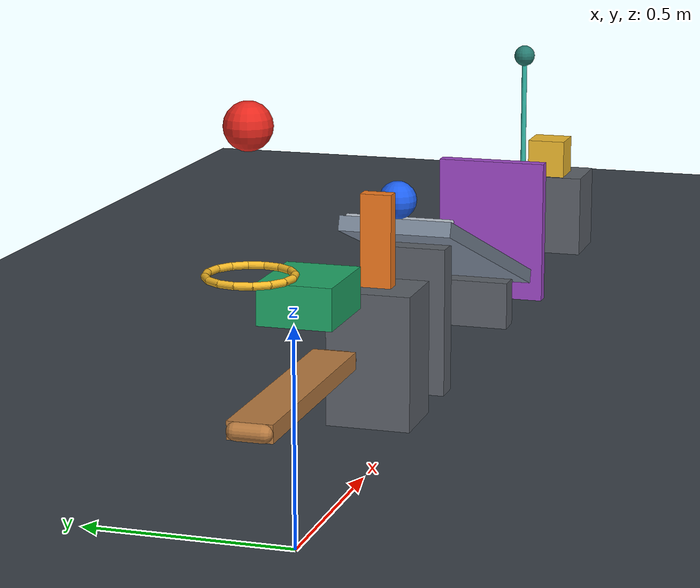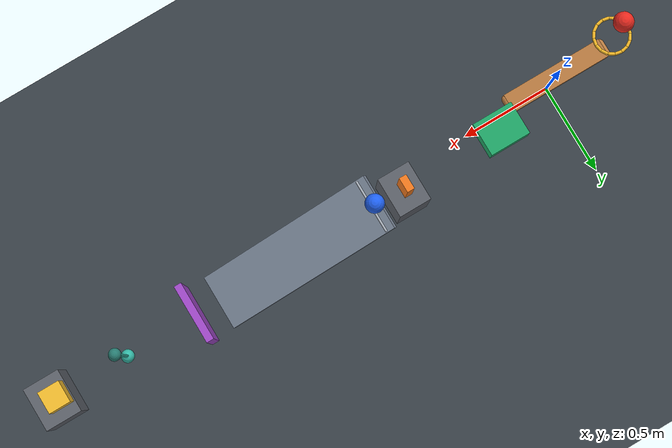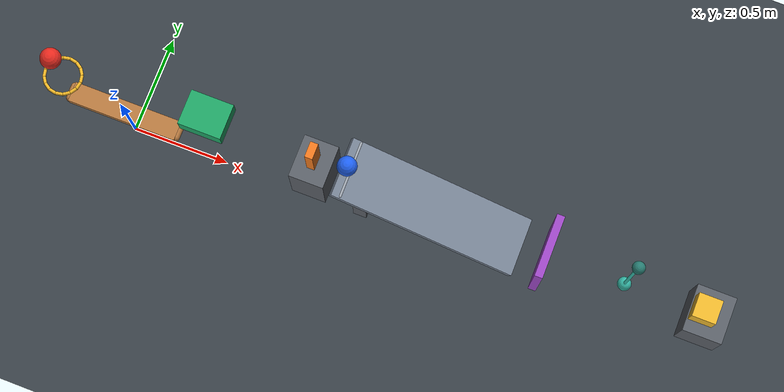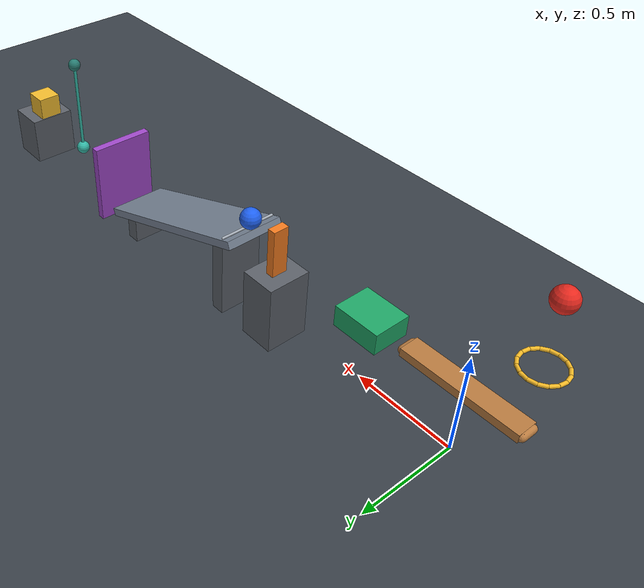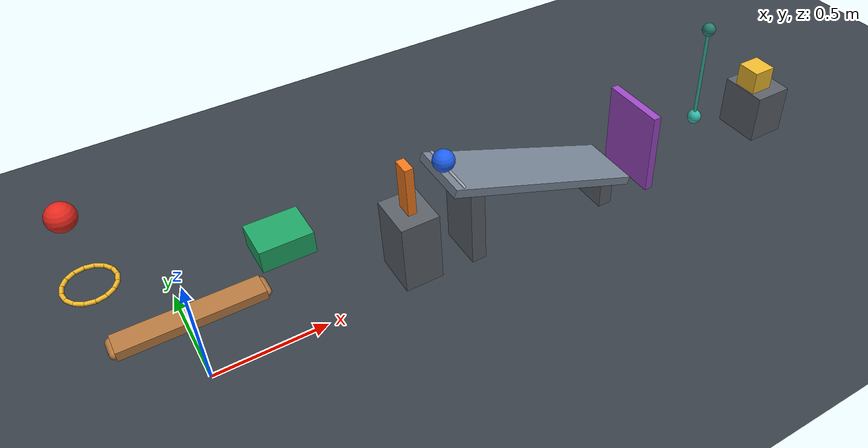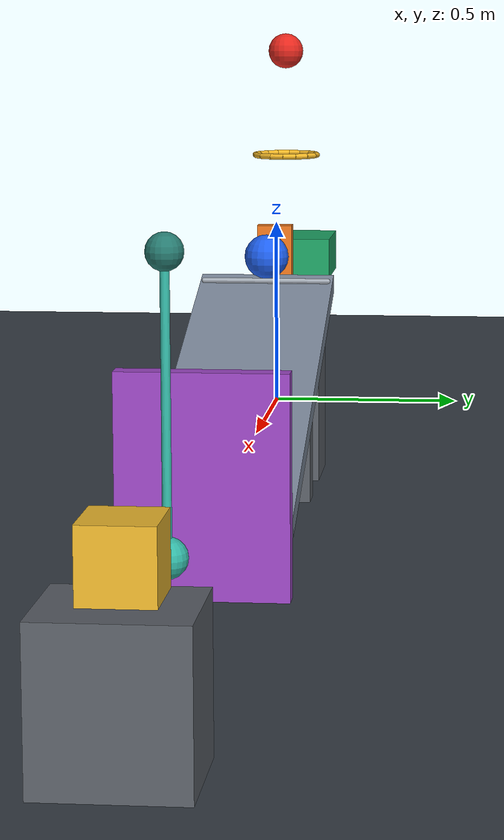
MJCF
<mujoco model="revised_passive_chain_reaction">
  <compiler angle="degree" autolimits="true" inertiafromgeom="auto"/>
  <option timestep="0.002" gravity="0 0 -9.81" integrator="implicitfast" solver="Newton" cone="elliptic" iterations="100" tolerance="1e-10"/>

  <!-- Contact damping approximates restitution 0.04; MJCF has no direct restitution coefficient. -->
  <!-- Sliding friction is 0.72. Additional torsional and rolling friction dissipate residual ball motion. -->
  <!-- Explicit inertias represent a center-weighted lever, top-weighted door, and hub-weighted pendulum. -->
  <!-- The start keyframe uses model reference positions and zero velocities. -->

  <visual>
    <headlight ambient="0.35 0.35 0.35" diffuse="0.7 0.7 0.7" specular="0.2 0.2 0.2"/>
  </visual>

  <worldbody>
    <light name="scene_light" pos="1 -2 4" dir="0 0 -1" directional="true"/>
    <camera name="overview" pos="1.4 -4.5 2.8" xyaxes="1 0 0 0 0.45 0.893"/>

    <geom name="floor" type="plane" pos="0 0 0" size="6 4 0.1" friction="0.72 0.005 0.002" condim="6" solref="0.008 0.716" solimp="0.95 0.99 0.001" rgba="0.22 0.25 0.28 1"/>

    <!-- Ball center starts 0.30 m above the ring plane.
         Lever contact occurs with its center 0.25 m below that plane. -->
    <body name="ball1" pos="-0.265 0 0.970">
      <freejoint name="ball1_free"/>
      <geom name="ball1_sphere" type="sphere" size="0.05" mass="0.20" friction="0.72 0.005 0.002" condim="6" solref="0.008 0.716" solimp="0.95 0.99 0.001" rgba="0.9 0.16 0.12 1"/>
    </body>

    <!-- Horizontal polygonal ring, approximately 0.160 m clear diameter. -->
    <body name="ring1" pos="-0.265 0 0.670">
      <geom name="ring1_segment00" type="capsule" fromto="0.089724 0 0 0.082894 0.034336 0" size="0.008" friction="0.72 0.005 0.002" condim="6" solref="0.008 0.716" solimp="0.95 0.99 0.001" rgba="0.95 0.72 0.15 1"/>
      <geom name="ring1_segment01" type="capsule" fromto="0.082894 0.034336 0 0.063444 0.063444 0" size="0.008" friction="0.72 0.005 0.002" condim="6" solref="0.008 0.716" solimp="0.95 0.99 0.001" rgba="0.95 0.72 0.15 1"/>
      <geom name="ring1_segment02" type="capsule" fromto="0.063444 0.063444 0 0.034336 0.082894 0" size="0.008" friction="0.72 0.005 0.002" condim="6" solref="0.008 0.716" solimp="0.95 0.99 0.001" rgba="0.95 0.72 0.15 1"/>
      <geom name="ring1_segment03" type="capsule" fromto="0.034336 0.082894 0 0 0.089724 0" size="0.008" friction="0.72 0.005 0.002" condim="6" solref="0.008 0.716" solimp="0.95 0.99 0.001" rgba="0.95 0.72 0.15 1"/>
      <geom name="ring1_segment04" type="capsule" fromto="0 0.089724 0 -0.034336 0.082894 0" size="0.008" friction="0.72 0.005 0.002" condim="6" solref="0.008 0.716" solimp="0.95 0.99 0.001" rgba="0.95 0.72 0.15 1"/>
      <geom name="ring1_segment05" type="capsule" fromto="-0.034336 0.082894 0 -0.063444 0.063444 0" size="0.008" friction="0.72 0.005 0.002" condim="6" solref="0.008 0.716" solimp="0.95 0.99 0.001" rgba="0.95 0.72 0.15 1"/>
      <geom name="ring1_segment06" type="capsule" fromto="-0.063444 0.063444 0 -0.082894 0.034336 0" size="0.008" friction="0.72 0.005 0.002" condim="6" solref="0.008 0.716" solimp="0.95 0.99 0.001" rgba="0.95 0.72 0.15 1"/>
      <geom name="ring1_segment07" type="capsule" fromto="-0.082894 0.034336 0 -0.089724 0 0" size="0.008" friction="0.72 0.005 0.002" condim="6" solref="0.008 0.716" solimp="0.95 0.99 0.001" rgba="0.95 0.72 0.15 1"/>
      <geom name="ring1_segment08" type="capsule" fromto="-0.089724 0 0 -0.082894 -0.034336 0" size="0.008" friction="0.72 0.005 0.002" condim="6" solref="0.008 0.716" solimp="0.95 0.99 0.001" rgba="0.95 0.72 0.15 1"/>
      <geom name="ring1_segment09" type="capsule" fromto="-0.082894 -0.034336 0 -0.063444 -0.063444 0" size="0.008" friction="0.72 0.005 0.002" condim="6" solref="0.008 0.716" solimp="0.95 0.99 0.001" rgba="0.95 0.72 0.15 1"/>
      <geom name="ring1_segment10" type="capsule" fromto="-0.063444 -0.063444 0 -0.034336 -0.082894 0" size="0.008" friction="0.72 0.005 0.002" condim="6" solref="0.008 0.716" solimp="0.95 0.99 0.001" rgba="0.95 0.72 0.15 1"/>
      <geom name="ring1_segment11" type="capsule" fromto="-0.034336 -0.082894 0 0 -0.089724 0" size="0.008" friction="0.72 0.005 0.002" condim="6" solref="0.008 0.716" solimp="0.95 0.99 0.001" rgba="0.95 0.72 0.15 1"/>
      <geom name="ring1_segment12" type="capsule" fromto="0 -0.089724 0 0.034336 -0.082894 0" size="0.008" friction="0.72 0.005 0.002" condim="6" solref="0.008 0.716" solimp="0.95 0.99 0.001" rgba="0.95 0.72 0.15 1"/>
      <geom name="ring1_segment13" type="capsule" fromto="0.034336 -0.082894 0 0.063444 -0.063444 0" size="0.008" friction="0.72 0.005 0.002" condim="6" solref="0.008 0.716" solimp="0.95 0.99 0.001" rgba="0.95 0.72 0.15 1"/>
      <geom name="ring1_segment14" type="capsule" fromto="0.063444 -0.063444 0 0.082894 -0.034336 0" size="0.008" friction="0.72 0.005 0.002" condim="6" solref="0.008 0.716" solimp="0.95 0.99 0.001" rgba="0.95 0.72 0.15 1"/>
      <geom name="ring1_segment15" type="capsule" fromto="0.082894 -0.034336 0 0.089724 0 0" size="0.008" friction="0.72 0.005 0.002" condim="6" solref="0.008 0.716" solimp="0.95 0.99 0.001" rgba="0.95 0.72 0.15 1"/>
    </body>

    <!-- Overall lever envelope is 0.60 x 0.10 x 0.04 m.
         Its mass is concentrated near the center hinge rather than distributed uniformly. -->
    <body name="lever1" pos="0 0 0.350">
      <inertial pos="0 0 0" mass="0.50" diaginertia="0.0005 0.0060 0.0061"/>
      <joint name="lever1_hinge" type="hinge" axis="0 -1 0" range="0 45" damping="0.04" solreflimit="0.004 1" solimplimit="0.99 0.999 0.001"/>
      <geom name="lever1_bar" type="box" size="0.28 0.05 0.02" density="0" friction="0.72 0.005 0.002" condim="6" solref="0.008 0.716" solimp="0.95 0.99 0.001" rgba="0.72 0.48 0.25 1"/>
      <geom name="lever1_left_end" type="capsule" fromto="-0.28 -0.03 0 -0.28 0.03 0" size="0.02" density="0" friction="0.72 0.005 0.002" condim="6" solref="0.008 0.716" solimp="0.95 0.99 0.001" rgba="0.72 0.48 0.25 1"/>
      <geom name="lever1_right_end" type="capsule" fromto="0.28 -0.03 0 0.28 0.03 0" size="0.02" density="0" friction="0.72 0.005 0.002" condim="6" solref="0.008 0.716" solimp="0.95 0.99 0.001" rgba="0.72 0.48 0.25 1"/>
    </body>

    <!-- The lever end strikes the cart's lower-left corner near 10 degrees.
         The joint provides a horizontal guide without additional rail friction. -->
    <body name="cart1" pos="0.40306668 0.10 0.45862149">
      <joint name="cart1_slide" type="slide" axis="1 0 0" range="0 0.50" damping="0.20" solreflimit="0.004 1" solimplimit="0.99 0.999 0.001"/>
      <geom name="cart1_box" type="box" size="0.11 0.09 0.05" mass="0.50" friction="0.72 0.005 0.002" condim="6" solref="0.008 0.716" solimp="0.95 0.99 0.001" rgba="0.12 0.65 0.40 1"/>
    </body>

    <body name="domino_support" pos="0.95306668 0.10 0.175">
      <geom name="domino_support_box" type="box" size="0.09 0.11 0.175" friction="0.72 0.005 0.002" condim="6" solref="0.008 0.716" solimp="0.95 0.99 0.001" rgba="0.36 0.38 0.41 1"/>
    </body>

    <!-- Dimensions are 0.04 m along travel, 0.08 m transverse, and 0.24 m vertical.
         Initial cart-to-domino face clearance remains exactly 0.42 m. -->
    <body name="domino1" pos="0.95306668 0.10 0.470">
      <freejoint name="domino1_free"/>
      <geom name="domino1_box" type="box" size="0.02 0.04 0.12" mass="0.25" friction="0.72 0.005 0.002" condim="6" solref="0.008 0.716" solimp="0.95 0.99 0.001" rgba="0.95 0.48 0.12 1"/>
    </body>

    <!-- Domino-to-ball center spacing along travel is 0.18 m. -->
    <body name="ball2" pos="1.13306668 0.10 0.536130">
      <freejoint name="ball2_free"/>
      <geom name="ball2_sphere" type="sphere" size="0.05" mass="0.20" friction="0.72 0.005 0.002" condim="6" solref="0.008 0.716" solimp="0.95 0.99 0.001" rgba="0.12 0.38 0.94 1"/>
    </body>

    <!-- Surface length 1.00 m, width 0.30 m, inclination 20 degrees.
         Low surface edge is x=2.04775930, z=0.15.
         The launch lip holds ball2 at rest until the domino pushes it over. -->
    <body name="ramp1" pos="0 0 0">
      <geom name="ramp1_surface" type="box" pos="1.57107259 0.10 0.30221622" quat="0.984807753 0 0.173648178 0" size="0.50 0.15 0.02" friction="0.72 0.005 0.002" condim="6" solref="0.008 0.716" solimp="0.95 0.99 0.001" rgba="0.48 0.53 0.60 1"/>
      <geom name="ramp1_launch_lip" type="capsule" fromto="1.150570 -0.04 0.482935 1.150570 0.24 0.482935" size="0.006" friction="0.72 0.005 0.002" condim="6" solref="0.008 0.716" solimp="0.95 0.99 0.001" rgba="0.65 0.68 0.72 1"/>
      <geom name="ramp1_high_leg" type="box" pos="1.23 0.10 0.1985" size="0.035 0.11 0.1985" friction="0.72 0.005 0.002" condim="6" solref="0.008 0.716" solimp="0.95 0.99 0.001" rgba="0.36 0.38 0.41 1"/>
      <geom name="ramp1_low_leg" type="box" pos="1.94 0.10 0.069" size="0.035 0.11 0.069" friction="0.72 0.005 0.002" condim="6" solref="0.008 0.716" solimp="0.95 0.99 0.001" rgba="0.36 0.38 0.41 1"/>
    </body>

    <!-- Bottom-hinged panel: 0.42 m high, 0.32 m wide, 0.04 m thick.
         Its near face is 0.10 m beyond the low ramp edge.
         Gravity amplifies the tilt initiated by ball2. -->
    <body name="door1" pos="2.16775930 0.10 0.030">
      <inertial pos="0 0 0.390" mass="0.45" diaginertia="0.0041 0.00035 0.0040"/>
      <joint name="door1_hinge" type="hinge" axis="0 1 0" range="0 70" damping="0.04" solreflimit="0.004 1" solimplimit="0.99 0.999 0.001"/>
      <geom name="door1_panel" type="box" pos="0 0 0.21" size="0.02 0.16 0.21" density="0" friction="0.72 0.005 0.002" condim="6" solref="0.008 0.716" solimp="0.95 0.99 0.001" rgba="0.62 0.28 0.78 1"/>
    </body>

    <!-- Rigid pendulum with 0.50 m pivot-to-striker-center length and total mass 0.35 kg. -->
    <body name="pendulum1" pos="2.57605930 0.10 0.7125">
      <inertial pos="0 0 -0.10" mass="0.35" diaginertia="0.014 0.014 0.00015"/>
      <joint name="pendulum1_hinge" type="hinge" axis="0 -1 0" range="0 38" damping="0.04" solreflimit="0.004 1" solimplimit="0.99 0.999 0.001"/>
      <geom name="pendulum1_rod" type="capsule" fromto="0 0 0 0 0 -0.50" size="0.008" density="0" friction="0.72 0.005 0.002" condim="6" solref="0.008 0.716" solimp="0.95 0.99 0.001" rgba="0.20 0.72 0.65 1"/>
      <geom name="pendulum1_hub" type="sphere" pos="0 0 0" size="0.032" density="0" friction="0.72 0.005 0.002" condim="6" solref="0.008 0.716" solimp="0.95 0.99 0.001" rgba="0.15 0.48 0.44 1"/>
      <geom name="pendulum1_striker" type="sphere" pos="0 0 -0.50" size="0.035" density="0" friction="0.72 0.005 0.002" condim="6" solref="0.008 0.716" solimp="0.95 0.99 0.001" rgba="0.20 0.72 0.65 1"/>
    </body>

    <body name="block_support" pos="3.00844001 0.10 0.12924731">
      <geom name="block_support_box" type="box" size="0.10 0.12 0.12924731" friction="0.72 0.005 0.002" condim="6" solref="0.008 0.716" solimp="0.95 0.99 0.001" rgba="0.36 0.38 0.41 1"/>
    </body>

    <!-- Striker contact begins at approximately 37.5 degrees, just before the 38-degree stop. -->
    <body name="block1" pos="2.97544001 0.10 0.31849462">
      <freejoint name="block1_free"/>
      <geom name="block1_box" type="box" size="0.06 0.06 0.06" mass="0.35" friction="0.72 0.005 0.002" condim="6" solref="0.008 0.716" solimp="0.95 0.99 0.001" rgba="0.94 0.73 0.18 1"/>
    </body>
  </worldbody>

  <keyframe>
    <key name="start" time="0" qvel="0 0 0 0 0 0 0 0 0 0 0 0 0 0 0 0 0 0 0 0 0 0 0 0 0 0 0 0"/>
  </keyframe>
</mujoco>
